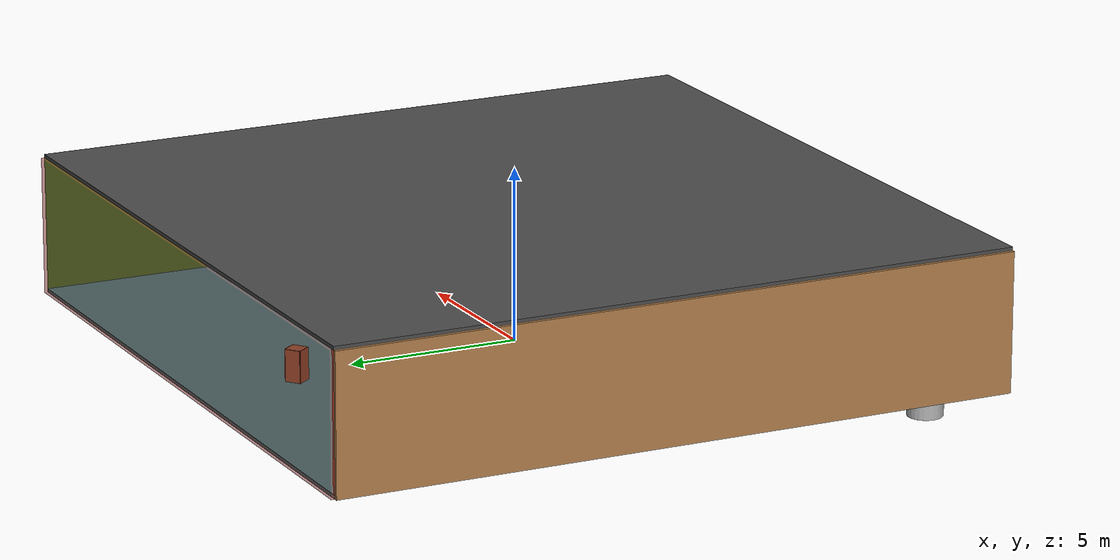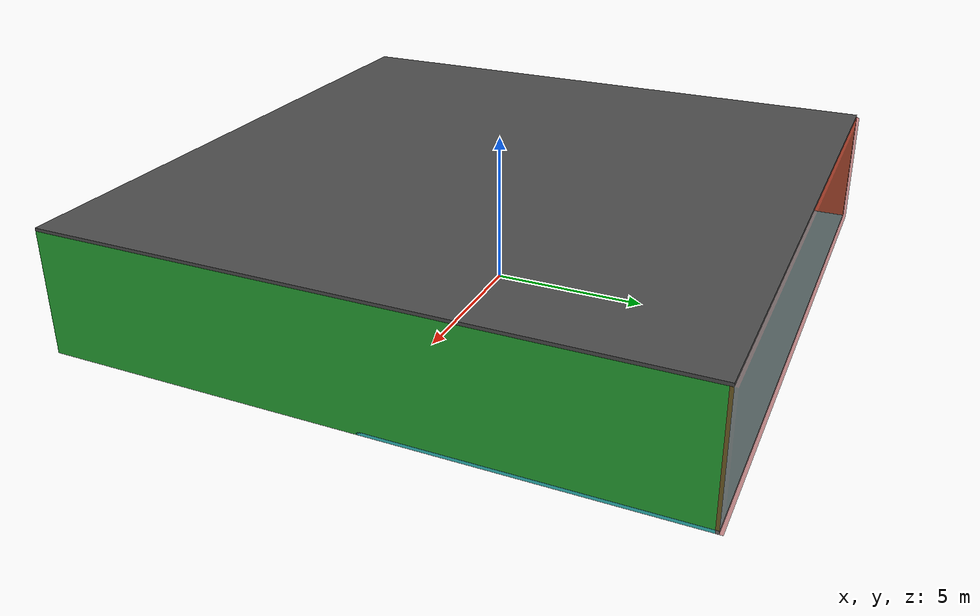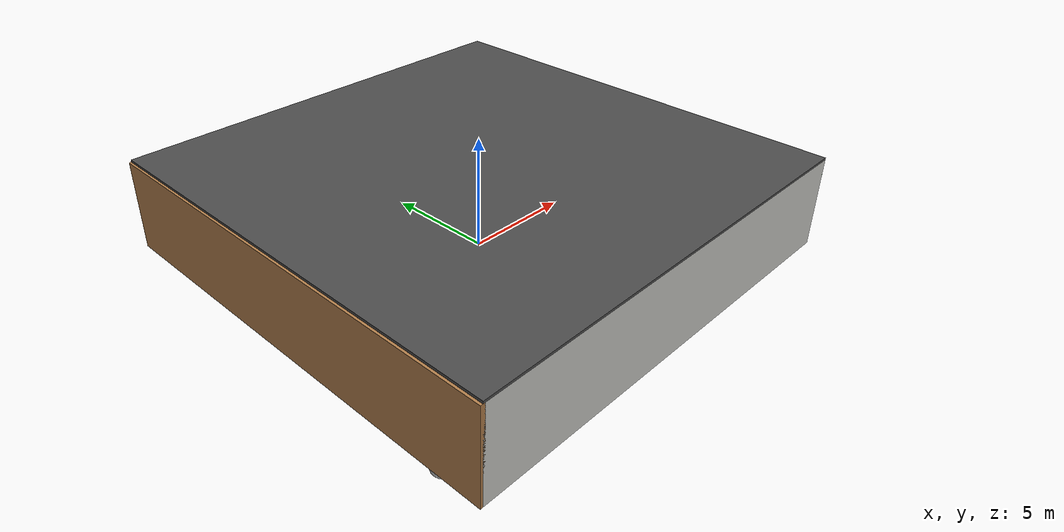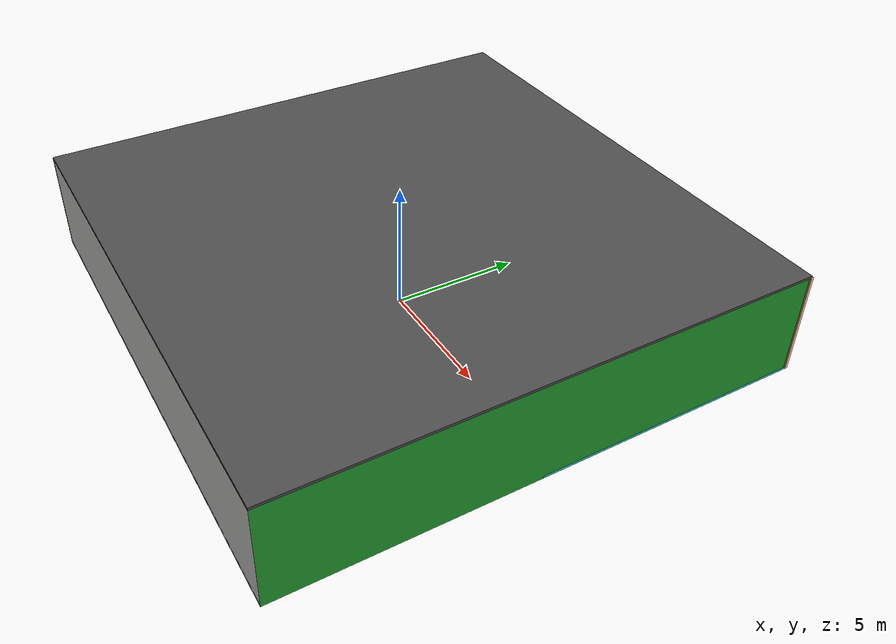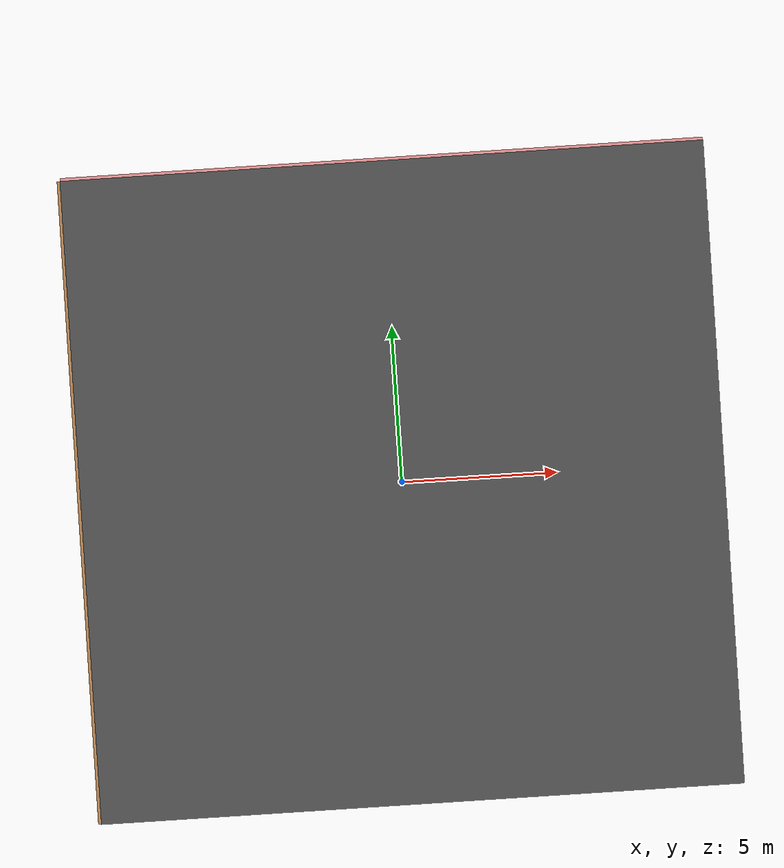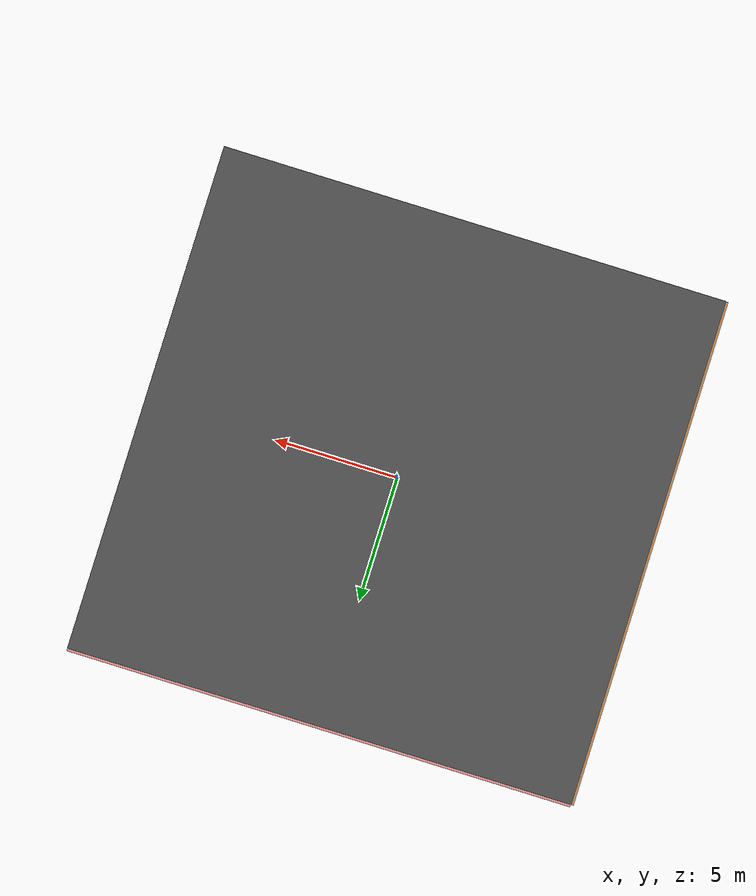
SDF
<sdf version="1.4">
 <world name="default">
  <physics type="ode">
   <max_step_size>0.001</max_step_size>
   <real_time_factor>1</real_time_factor>
   <real_time_update_rate>1000</real_time_update_rate>
   <gravity>0 0 -9.8</gravity>
  </physics>
  <scene><ambient>0.4 0.4 0.4 1</ambient><background>0.7 0.7 0.7 1</background><shadows>1</shadows></scene>
  <model name="Surrounding">
   <static>1</static>
   <link name="Ceiling">
    <collision name="Ceiling_Collision"><geometry><box><size>20 20 0.1</size></box></geometry></collision>
    <visual name="Ceiling_Visual">
     <geometry><box><size>20 20 0.1</size></box></geometry>
     <material>
      <script><uri>file://media/materials/scripts/gazebo.material</uri><name>Gazebo/DarkGrey</name></script>
     </material>
    </visual>
    <pose>0 0 4.05 0 0 0</pose>
   </link>
   <link name="Wall_South">
    <collision name="Wall_South_Collision">
     <geometry><box><size>20 0 4</size></box></geometry>
     <pose>0 0 2 0 -0 0</pose>
    </collision>
    <visual name="Wall_South_Visual">
     <pose>0 0 2 0 -0 0</pose>
     <geometry><box><size>20 0 4</size></box></geometry>
     <material>
      <script><uri>file://media/materials/scripts/gazebo.material</uri><name>Gazebo/CeilingTiled</name></script>
     </material>
    </visual>
    <velocity_decay><linear>0</linear><angular>0</angular></velocity_decay>
    <pose>0 -10 0 0 -0 0</pose>
   </link>
   <link name="Wall_East">
    <collision name="Wall_21_Collision">
     <geometry><box><size>20 0 4</size></box></geometry>
     <pose>0 0 2 0 -0 0</pose>
    </collision>
    <visual name="Wall_21_Visual">
     <pose>0 0 2 0 -0 0</pose>
     <geometry><box><size>20 0 4</size></box></geometry>
     <material>
      <script><uri>file://media/materials/scripts/gazebo.material</uri><name>Gazebo/Green</name></script>
     </material>
    </visual>
    <velocity_decay><linear>0</linear><angular>0</angular></velocity_decay>
    <pose>10 0 0 0 -0 1.5708</pose>
   </link>
   <link name="Wall_North">
    <collision name="Wall_22_Collision">
     <geometry><box><size>20 0.2 4</size></box></geometry>
     <pose>0 0 2 0 -0 0</pose>
    </collision>
    <visual name="Wall_22_Visual">
     <pose>0 0 2 0 -0 0</pose>
     <geometry><box><size>20 0.2 4</size></box></geometry>
     <material>
      <script><uri>file://media/materials/scripts/gazebo.material</uri><name>Gazebo/RedTransparent</name></script>
     </material>
    </visual>
    <velocity_decay><linear>0</linear><angular>0</angular></velocity_decay>
    <pose>0 10 0 0 -0 0</pose>
   </link>
   <link name="Wall_West">
    <collision name="Wall_23_Collision">
     <geometry><box><size>20 0.2 4</size></box></geometry>
     <pose>0 0 2 0 -0 0</pose>
    </collision>
    <visual name="Wall_23_Visual">
     <pose>0 0 2 0 -0 0</pose>
     <geometry><box><size>20 0.2 4</size></box></geometry>
     <material>
      <script><uri>file://media/materials/scripts/gazebo.material</uri><name>Gazebo/WoodFloor</name></script>
     </material>
    </visual>
    <velocity_decay><linear>0</linear><angular>0</angular></velocity_decay>
    <pose>-10 0 0 0 0 -1.5708</pose>
   </link>
   <link name="Ground_link">
    <collision name="collision">
     <pose>0 0 .05 0 -0 0</pose>
     <geometry><box><size>20 20 0.1</size></box></geometry>
    </collision>
    <visual name="visual">
     <pose>0 0 .05 0 -0 0</pose>
     <geometry><box><size>20 20 0.1</size></box></geometry>
     <material>
      <script><uri>file://media/materials/scripts/gazebo.material</uri><name>Gazebo/TurquoiseGlow</name></script>
     </material>
    </visual>
   </link>
   <static>1</static>
  </model>
  <spherical_coordinates>
   <surface_model>EARTH_WGS84</surface_model>
   <latitude_deg>0</latitude_deg>
   <longitude_deg>0</longitude_deg>
   <elevation>0</elevation>
   <heading_deg>0</heading_deg>
  </spherical_coordinates>
  <light name="lightball_0" type="diffuse">
   <diffuse>0.8 0.8 0.8 1</diffuse>
   <specular>0.2 0.2 0.2 1</specular>
   <attenuation>
    <range>100</range>
    <constant>0.7</constant>
    <linear>0.01</linear>
    <quadratic>0.001</quadratic>
   </attenuation>
   <direction>-0.5 0.1 -0.9</direction>
   <pose>2.80060304584 4.1201866699 1.65055089981 0 0 0</pose>
  </light>
  <light name="lightball_1" type="diffuse">
   <diffuse>0.8 0.8 0.8 1</diffuse>
   <specular>0.2 0.2 0.2 1</specular>
   <attenuation>
    <range>100</range>
    <constant>0.7</constant>
    <linear>0.01</linear>
    <quadratic>0.001</quadratic>
   </attenuation>
   <direction>-0.5 0.1 -0.9</direction>
   <pose>-6.61433253525 -6.59081053986 3.7614057596 0 0 0</pose>
  </light>
  <light name="lightball_2" type="diffuse">
   <diffuse>0.8 0.8 0.8 1</diffuse>
   <specular>0.2 0.2 0.2 1</specular>
   <attenuation>
    <range>100</range>
    <constant>0.7</constant>
    <linear>0.01</linear>
    <quadratic>0.001</quadratic>
   </attenuation>
   <direction>-0.5 0.1 -0.9</direction>
   <pose>-2.66742545254 -5.26181899081 3.34363421685 0 0 0</pose>
  </light>
  <light name="lightball_3" type="diffuse">
   <diffuse>0.8 0.8 0.8 1</diffuse>
   <specular>0.2 0.2 0.2 1</specular>
   <attenuation>
    <range>100</range>
    <constant>0.7</constant>
    <linear>0.01</linear>
    <quadratic>0.001</quadratic>
   </attenuation>
   <direction>-0.5 0.1 -0.9</direction>
   <pose>-6.55227790346 7.89434725613 1.61828337064 0 0 0</pose>
  </light>
  <light name="lightball_4" type="diffuse">
   <diffuse>0.8 0.8 0.8 1</diffuse>
   <specular>0.2 0.2 0.2 1</specular>
   <attenuation>
    <range>100</range>
    <constant>0.7</constant>
    <linear>0.01</linear>
    <quadratic>0.001</quadratic>
   </attenuation>
   <direction>-0.5 0.1 -0.9</direction>
   <pose>-8.75770244219 -3.73423348527 3.55349437682 0 0 0</pose>
  </light>
  <light name="lightball_5" type="diffuse">
   <diffuse>0.8 0.8 0.8 1</diffuse>
   <specular>0.2 0.2 0.2 1</specular>
   <attenuation>
    <range>100</range>
    <constant>0.7</constant>
    <linear>0.01</linear>
    <quadratic>0.001</quadratic>
   </attenuation>
   <direction>-0.5 0.1 -0.9</direction>
   <pose>3.95120216673 5.54150350215 2.83965973062 0 0 0</pose>
  </light>
  <light name="lightball_6" type="diffuse">
   <diffuse>0.8 0.8 0.8 1</diffuse>
   <specular>0.2 0.2 0.2 1</specular>
   <attenuation>
    <range>100</range>
    <constant>0.7</constant>
    <linear>0.01</linear>
    <quadratic>0.001</quadratic>
   </attenuation>
   <direction>-0.5 0.1 -0.9</direction>
   <pose>-6.54622088843 7.15396597688 3.45417294423 0 0 0</pose>
  </light>
  <light name="lightball_7" type="diffuse">
   <diffuse>0.8 0.8 0.8 1</diffuse>
   <specular>0.2 0.2 0.2 1</specular>
   <attenuation>
    <range>100</range>
    <constant>0.7</constant>
    <linear>0.01</linear>
    <quadratic>0.001</quadratic>
   </attenuation>
   <direction>-0.5 0.1 -0.9</direction>
   <pose>-2.69761348767 2.49405961844 0.780108747037 0 0 0</pose>
  </light>
  <light name="lightball_8" type="diffuse">
   <diffuse>0.8 0.8 0.8 1</diffuse>
   <specular>0.2 0.2 0.2 1</specular>
   <attenuation>
    <range>100</range>
    <constant>0.7</constant>
    <linear>0.01</linear>
    <quadratic>0.001</quadratic>
   </attenuation>
   <direction>-0.5 0.1 -0.9</direction>
   <pose>0.536741149034 -9.72096765219 2.16055094891 0 0 0</pose>
  </light>
  <light name="lightball_9" type="diffuse">
   <diffuse>0.8 0.8 0.8 1</diffuse>
   <specular>0.2 0.2 0.2 1</specular>
   <attenuation>
    <range>100</range>
    <constant>0.7</constant>
    <linear>0.01</linear>
    <quadratic>0.001</quadratic>
   </attenuation>
   <direction>-0.5 0.1 -0.9</direction>
   <pose>1.24999961448 -2.16006681902 2.80025460796 0 0 0</pose>
  </light>
  <light name="lightball_10" type="diffuse">
   <diffuse>0.8 0.8 0.8 1</diffuse>
   <specular>0.2 0.2 0.2 1</specular>
   <attenuation>
    <range>100</range>
    <constant>0.7</constant>
    <linear>0.01</linear>
    <quadratic>0.001</quadratic>
   </attenuation>
   <direction>-0.5 0.1 -0.9</direction>
   <pose>-3.68514611591 5.98242662884 2.54742391099 0 0 0</pose>
  </light>
  <light name="lightball_11" type="diffuse">
   <diffuse>0.8 0.8 0.8 1</diffuse>
   <specular>0.2 0.2 0.2 1</specular>
   <attenuation>
    <range>100</range>
    <constant>0.7</constant>
    <linear>0.01</linear>
    <quadratic>0.001</quadratic>
   </attenuation>
   <direction>-0.5 0.1 -0.9</direction>
   <pose>9.62163348923 2.3773539975 2.82988011862 0 0 0</pose>
  </light>
  <include>
   <uri>model://textured_shapes</uri>
   <pose>-7.95641891551 -8.19517499686 0 0 0 1.27179586644</pose>
  </include>
  <include><uri>model://cabinet</uri><pose>-0.862394391511 7.01047490144 0 0 0 2.2096937675</pose></include>
  <include><uri>model://cabinet</uri><pose>2.13607269796 -5.00983416485 0 0 0 2.79673009439</pose></include>
 </world>
</sdf>

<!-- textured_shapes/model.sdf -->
<sdf version="1.6">
  <model name="textured_shapes">
    <pose>0 0 0.5 0 0 0</pose>
    <link name="box">
      <pose>0 -1.5 0 0 0 0</pose>
      <collision name="collision">
        <geometry>
          <box>
            <size>1 1 1</size>
          </box>
        </geometry>
      </collision>
      <visual name="visual">
        <geometry>
          <box>
            <size>1 1 1</size>
          </box>
        </geometry>
        <material>
          <script>
            <uri>model://../model_source/models/textured_shapes/materials/scripts</uri>
            <uri>model://../model_source/models/textured_shapes/materials/textures</uri>
            <name>TexturedShape/Squares</name>
          </script>
        </material>
      </visual>
    </link>
    <link name="sphere">
      <collision name="collision">
        <geometry>
          <sphere>
            <radius>0.5</radius>
          </sphere>
        </geometry>
      </collision>
      <visual name="visual">
        <geometry>
          <sphere>
            <radius>0.5</radius>
          </sphere>
        </geometry>
        <material>
          <script>
            <uri>model://../model_source/models/textured_shapes/materials/scripts</uri>
            <uri>model://../model_source/models/textured_shapes/materials/textures</uri>
            <name>TexturedShape/Squares</name>
          </script>
        </material>
      </visual>
    </link>
    <link name="cylinder">
      <pose>0 1.5 0 0 0 0</pose>
      <collision name="collision">
        <geometry>
          <cylinder>
            <radius>0.5</radius>
            <length>1</length>
          </cylinder>
        </geometry>
      </collision>
      <visual name="visual">
        <geometry>
          <cylinder>
            <radius>0.5</radius>
            <length>1</length>
          </cylinder>
        </geometry>
        <material>
          <script>
            <uri>model://../model_source/models/textured_shapes/materials/scripts</uri>
            <uri>model://../model_source/models/textured_shapes/materials/textures</uri>
            <name>TexturedShape/Squares</name>
          </script>
        </material>
      </visual>
    </link>
  </model>
</sdf>

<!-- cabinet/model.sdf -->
<sdf version="1.5">
  <model name="cabinet">
    <static>true</static>
    <link name="cabinet_bottom_plate">
      <inertial>
        <pose>0 0 -1 0 0 0</pose>
        <inertia>
          <ixx>2.050000</ixx>
          <ixy>0</ixy>
          <ixz>0</ixz>
          <iyy>2.050000</iyy>
          <iyz>0</iyz>
          <izz>2.050000</izz>
        </inertia>
        <mass>25.000000</mass>
      </inertial>
      <collision name="cabinet_bottom_plate_geom">
        <pose>0 0 0.010000 0 0 0</pose>
        <geometry>
          <box>
            <size>0.450000 0.450000 0.020000</size>
          </box>
        </geometry>
      </collision>
      <visual name="cabinet_bottom_plate_geom_visual">
        <pose>0 0 0.010000 0 0 0</pose>
        <geometry>
          <box>
            <size>0.450000 0.450000 0.020000</size>
          </box>
        </geometry>
        <material>
          <script>
            <uri>model://media/materials/scripts/gazebo.material</uri>
            <name>Gazebo/Wood</name>
          </script>
        </material>
      </visual>
      <collision name="cabinet_bottom_plate_geom_cabinet_back_plate">
        <pose>0.235000 0 0.510000 0 0 0</pose>
        <geometry>
          <box>
            <size>0.020000 0.450000 1.020000</size>
          </box>
        </geometry>
      </collision>
      <visual name="cabinet_bottom_plate_geom_cabinet_back_plate_visual">
        <pose>0.235000 0 0.510000 0 0 0</pose>
        <geometry>
          <box>
            <size>0.020000 0.450000 1.020000</size>
          </box>
        </geometry>
        <material>
          <script>
            <uri>model://media/materials/scripts/gazebo.material</uri>
            <name>Gazebo/Wood</name>
          </script>
        </material>
      </visual>
      <collision name="cabinet_bottom_plate_geom_cabinet_left_plate">
        <pose>0 0.235000 0.510000 0 0 0</pose>
        <geometry>
          <box>
            <size>0.450000 0.020000 1.020000</size>
          </box>
        </geometry>
      </collision>
      <visual name="cabinet_bottom_plate_geom_cabinet_left_plate_visual">
        <pose>0 0.235000 0.510000 0 0 0</pose>
        <geometry>
          <box>
            <size>0.450000 0.020000 1.020000</size>
          </box>
        </geometry>
        <material>
          <script>
            <uri>model://media/materials/scripts/gazebo.material</uri>
            <name>Gazebo/Wood</name>
          </script>
        </material>
      </visual>
      <collision name="cabinet_bottom_plate_geom_cabinet_middle_plate">
        <pose>0 0 0.510000 0 0 0</pose>
        <geometry>
          <box>
            <size>0.450000 0.450000 0.020000</size>
          </box>
        </geometry>
      </collision>
      <visual name="cabinet_bottom_plate_geom_cabinet_middle_plate_visual">
        <pose>0 0 0.510000 0 0 0</pose>
        <geometry>
          <box>
            <size>0.450000 0.450000 0.020000</size>
          </box>
        </geometry>
        <material>
          <script>
            <uri>model://media/materials/scripts/gazebo.material</uri>
            <name>Gazebo/Wood</name>
          </script>
        </material>
      </visual>
      <collision name="cabinet_bottom_plate_geom_cabinet_right_plate">
        <pose>0 -0.235000 0.510000 0 0 0</pose>
        <geometry>
          <box>
            <size>0.450000 0.020000 1.020000</size>
          </box>
        </geometry>
      </collision>
      <visual name="cabinet_bottom_plate_geom_cabinet_right_plate_visual">
        <pose>0 -0.235000 0.510000 0 0 0</pose>
        <geometry>
          <box>
            <size>0.450000 0.020000 1.020000</size>
          </box>
        </geometry>
        <material>
          <script>
            <uri>model://media/materials/scripts/gazebo.material</uri>
            <name>Gazebo/Wood</name>
          </script>
        </material>
      </visual>
      <collision name="cabinet_bottom_plate_geom_cabinet_top_plate">
        <pose>0 0 1.010000 0 0 0</pose>
        <geometry>
          <box>
            <size>0.450000 0.450000 0.020000</size>
          </box>
        </geometry>
      </collision>
      <visual name="cabinet_bottom_plate_geom_cabinet_top_plate_visual">
        <pose>0 0 1.010000 0 0 0</pose>
        <geometry>
          <box>
            <size>0.450000 0.450000 0.020000</size>
          </box>
        </geometry>
        <material>
          <script>
            <uri>model://media/materials/scripts/gazebo.material</uri>
            <name>Gazebo/Wood</name>
          </script>
        </material>
      </visual>
    </link>
  </model>
</sdf>
